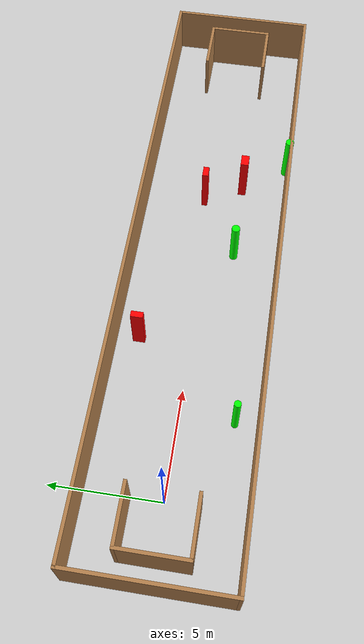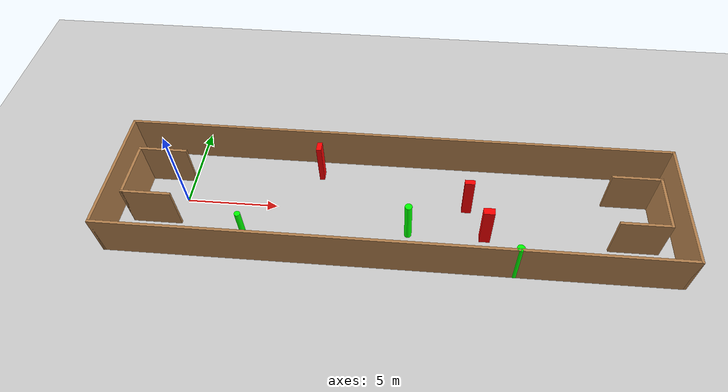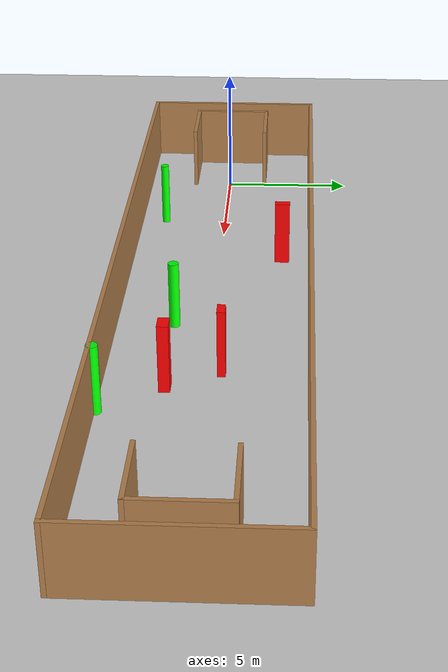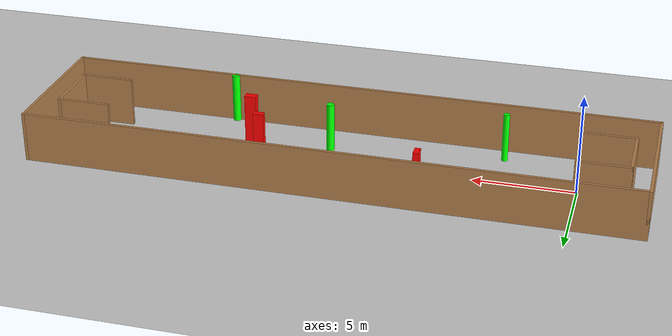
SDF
<sdf version="1.7">
 <world name="default">
  <light name="sun" type="directional">
   <pose>0 0 10 0 -0 0</pose>
   <diffuse>0.8 0.8 0.8 1</diffuse>
   <specular>0.2 0.2 0.2 1</specular>
   <attenuation>
    <range>1000</range>
    <constant>0.9</constant>
    <linear>0.01</linear>
    <quadratic>0.001</quadratic>
   </attenuation>
   <direction>-0.5 0.1 -0.9</direction>
   <spot><inner_angle>0</inner_angle><outer_angle>0</outer_angle><falloff>0</falloff></spot>
  </light>
  <model name="ground_plane">
   <static>1</static>
   <link name="link">
    <collision name="collision">
     <geometry><plane><normal>0 0 1</normal><size>100 100</size></plane></geometry>
     <surface>
      <contact><collide_bitmask>65535</collide_bitmask></contact>
      <friction><ode><mu>100</mu><mu2>50</mu2></ode></friction>
     </surface>
    </collision>
    <visual name="visual">
     <cast_shadows>0</cast_shadows>
     <geometry><plane><normal>0 0 1</normal><size>100 100</size></plane></geometry>
     <material>
      <script><uri>file://media/materials/scripts/gazebo.material</uri><name>Gazebo/Grey</name></script>
     </material>
    </visual>
   </link>
  </model>
  <gravity>0 0 -9.8</gravity>
  <magnetic_field>6e-06 2.3e-05 -4.2e-05</magnetic_field>
  <atmosphere type="adiabatic"/>
  <physics type="ode">
   <max_step_size>0.001</max_step_size>
   <real_time_factor>1</real_time_factor>
   <real_time_update_rate>1000</real_time_update_rate>
  </physics>
  <scene><ambient>0.4 0.4 0.4 1</ambient><background>0.7 0.7 0.7 1</background><shadows>1</shadows></scene>
  <spherical_coordinates>
   <surface_model>EARTH_WGS84</surface_model>
   <latitude_deg>0</latitude_deg>
   <longitude_deg>0</longitude_deg>
   <elevation>0</elevation>
   <heading_deg>0</heading_deg>
  </spherical_coordinates>
  <model name="my_base_walls">
   <link name="Wall_0">
    <collision name="Wall_0_Collision">
     <geometry><box><size>7.15 0.15 2.5</size></box></geometry>
     <pose>0 0 1.25 0 -0 0</pose>
    </collision>
    <visual name="Wall_0_Visual">
     <pose>0 0 1.25 0 -0 0</pose>
     <geometry><box><size>7.15 0.15 2.5</size></box></geometry>
     <material>
      <script><uri>file://media/materials/scripts/gazebo.material</uri><name>Gazebo/Wood</name></script>
      <ambient>1 1 1 1</ambient>
     </material>
     <meta><layer>0</layer></meta>
    </visual>
    <pose>-15 0 0 0 -0 1.5708</pose>
   </link>
   <link name="Wall_10">
    <collision name="Wall_10_Collision">
     <geometry><box><size>2.65 0.15 2.5</size></box></geometry>
     <pose>0 0 1.25 0 -0 0</pose>
    </collision>
    <visual name="Wall_10_Visual">
     <pose>0 0 1.25 0 -0 0</pose>
     <geometry><box><size>2.65 0.15 2.5</size></box></geometry>
     <material>
      <script><uri>file://media/materials/scripts/gazebo.material</uri><name>Gazebo/Wood</name></script>
      <ambient>1 1 1 1</ambient>
     </material>
     <meta><layer>0</layer></meta>
    </visual>
    <pose>-12.75 -1.5 0 0 -0 0</pose>
   </link>
   <link name="Wall_12">
    <collision name="Wall_12_Collision">
     <geometry><box><size>2.65 0.15 2.5</size></box></geometry>
     <pose>0 0 1.25 0 -0 0</pose>
    </collision>
    <visual name="Wall_12_Visual">
     <pose>0 0 1.25 0 -0 0</pose>
     <geometry><box><size>2.65 0.15 2.5</size></box></geometry>
     <material>
      <script><uri>file://media/materials/scripts/gazebo.material</uri><name>Gazebo/Wood</name></script>
      <ambient>1 1 1 1</ambient>
     </material>
     <meta><layer>0</layer></meta>
    </visual>
    <pose>-12.75 1.5 0 0 -0 0</pose>
   </link>
   <link name="Wall_14">
    <collision name="Wall_14_Collision">
     <geometry><box><size>3.15 0.15 2.5</size></box></geometry>
     <pose>0 0 1.25 0 -0 0</pose>
    </collision>
    <visual name="Wall_14_Visual">
     <pose>0 0 1.25 0 -0 0</pose>
     <geometry><box><size>3.15 0.15 2.5</size></box></geometry>
     <material>
      <script><uri>file://media/materials/scripts/gazebo.material</uri><name>Gazebo/Wood</name></script>
      <ambient>1 1 1 1</ambient>
     </material>
     <meta><layer>0</layer></meta>
    </visual>
    <pose>14 0 0 0 -0 -1.5708</pose>
   </link>
   <link name="Wall_15">
    <collision name="Wall_15_Collision">
     <geometry><box><size>2.65 0.15 2.5</size></box></geometry>
     <pose>0 0 1.25 0 -0 0</pose>
    </collision>
    <visual name="Wall_15_Visual">
     <pose>0 0 1.25 0 -0 0</pose>
     <geometry><box><size>2.65 0.15 2.5</size></box></geometry>
     <material>
      <script><uri>file://media/materials/scripts/gazebo.material</uri><name>Gazebo/Wood</name></script>
      <ambient>1 1 1 1</ambient>
     </material>
     <meta><layer>0</layer></meta>
    </visual>
    <pose>12.75 -1.5 0 0 -0 3.14159</pose>
   </link>
   <link name="Wall_17">
    <collision name="Wall_17_Collision">
     <geometry><box><size>2.65 0.15 2.5</size></box></geometry>
     <pose>0 0 1.25 0 -0 0</pose>
    </collision>
    <visual name="Wall_17_Visual">
     <pose>0 0 1.25 0 -0 0</pose>
     <geometry><box><size>2.65 0.15 2.5</size></box></geometry>
     <material>
      <script><uri>file://media/materials/scripts/gazebo.material</uri><name>Gazebo/Wood</name></script>
      <ambient>1 1 1 1</ambient>
     </material>
     <meta><layer>0</layer></meta>
    </visual>
    <pose>12.75 1.5 0 0 -0 3.14159</pose>
   </link>
   <link name="Wall_2">
    <collision name="Wall_2_Collision">
     <geometry><box><size>30.15 0.15 2.5</size></box></geometry>
     <pose>0 0 1.25 0 -0 0</pose>
    </collision>
    <visual name="Wall_2_Visual">
     <pose>0 0 1.25 0 -0 0</pose>
     <geometry><box><size>30.15 0.15 2.5</size></box></geometry>
     <material>
      <script><uri>file://media/materials/scripts/gazebo.material</uri><name>Gazebo/Wood</name></script>
      <ambient>1 1 1 1</ambient>
     </material>
     <meta><layer>0</layer></meta>
    </visual>
    <pose>-0 -3.5 0 0 -0 0</pose>
   </link>
   <link name="Wall_4">
    <collision name="Wall_4_Collision">
     <geometry><box><size>30.15 0.15 2.5</size></box></geometry>
     <pose>0 0 1.25 0 -0 0</pose>
    </collision>
    <visual name="Wall_4_Visual">
     <pose>0 0 1.25 0 -0 0</pose>
     <geometry><box><size>30.15 0.15 2.5</size></box></geometry>
     <material>
      <script><uri>file://media/materials/scripts/gazebo.material</uri><name>Gazebo/Wood</name></script>
      <ambient>1 1 1 1</ambient>
     </material>
     <meta><layer>0</layer></meta>
    </visual>
    <pose>-0 3.5 0 0 -0 0</pose>
   </link>
   <link name="Wall_6">
    <collision name="Wall_6_Collision">
     <geometry><box><size>7.15 0.15 2.5</size></box></geometry>
     <pose>0 0 1.25 0 -0 0</pose>
    </collision>
    <visual name="Wall_6_Visual">
     <pose>0 0 1.25 0 -0 0</pose>
     <geometry><box><size>7.15 0.15 2.5</size></box></geometry>
     <material>
      <script><uri>file://media/materials/scripts/gazebo.material</uri><name>Gazebo/Wood</name></script>
      <ambient>1 1 1 1</ambient>
     </material>
     <meta><layer>0</layer></meta>
    </visual>
    <pose>15 0 0 0 -0 -1.5708</pose>
   </link>
   <link name="Wall_9">
    <collision name="Wall_9_Collision">
     <geometry><box><size>3.15 0.15 2.5</size></box></geometry>
     <pose>0 0 1.25 0 -0 0</pose>
    </collision>
    <visual name="Wall_9_Visual">
     <pose>0 0 1.25 0 -0 0</pose>
     <geometry><box><size>3.15 0.15 2.5</size></box></geometry>
     <material>
      <script><uri>file://media/materials/scripts/gazebo.material</uri><name>Gazebo/Wood</name></script>
      <ambient>1 1 1 1</ambient>
     </material>
     <meta><layer>0</layer></meta>
    </visual>
    <pose>-14 0 0 0 -0 -1.5708</pose>
   </link>
   <static>1</static>
   <pose>11.5 0 0 0 -0 0</pose>
  </model>
  <model name="cylinder1">
   <static>1</static>
   <link name="link">
    <inertial>
     <mass>1</mass>
     <inertia><ixx>0.5</ixx><ixy>0</ixy><ixz>0</ixz><iyy>0.5</iyy><iyz>0</iyz><izz>1</izz></inertia>
    </inertial>
    <collision name="collision">
     <geometry><cylinder><radius>0.20060826351590563</radius><length>2.5</length></cylinder></geometry>
    </collision>
    <visual name="visual">
     <geometry><cylinder><radius>0.20060826351590563</radius><length>2.5</length></cylinder></geometry>
     <material>
      <ambient>0 1 0 1</ambient>
      <diffuse>0 1 0 1</diffuse>
      <specular>0.1 0.1 0.1 1</specular>
      <emissive>0 0 0 0</emissive>
     </material>
    </visual>
   </link>
   <pose>17.94935495092983 -3.398948258416411 1.25 0 0 0</pose>
  </model>
  <model name="cylinder2">
   <static>1</static>
   <link name="link">
    <inertial>
     <mass>1</mass>
     <inertia><ixx>0.5</ixx><ixy>0</ixy><ixz>0</ixz><iyy>0.5</iyy><iyz>0</iyz><izz>1</izz></inertia>
    </inertial>
    <collision name="collision">
     <geometry><cylinder><radius>0.1926515216137074</radius><length>2.5</length></cylinder></geometry>
    </collision>
    <visual name="visual">
     <geometry><cylinder><radius>0.1926515216137074</radius><length>2.5</length></cylinder></geometry>
     <material>
      <ambient>0 1 0 1</ambient>
      <diffuse>0 1 0 1</diffuse>
      <specular>0.1 0.1 0.1 1</specular>
      <emissive>0 0 0 0</emissive>
     </material>
    </visual>
   </link>
   <pose>12.378201964775398 -1.343486112277839 1.25 0 0 0</pose>
  </model>
  <model name="cylinder3">
   <static>1</static>
   <link name="link">
    <inertial>
     <mass>1</mass>
     <inertia><ixx>0.5</ixx><ixy>0</ixy><ixz>0</ixz><iyy>0.5</iyy><iyz>0</iyz><izz>1</izz></inertia>
    </inertial>
    <collision name="collision">
     <geometry><cylinder><radius>0.1542914561307829</radius><length>2.5</length></cylinder></geometry>
    </collision>
    <visual name="visual">
     <geometry><cylinder><radius>0.1542914561307829</radius><length>2.5</length></cylinder></geometry>
     <material>
      <ambient>0 1 0 1</ambient>
      <diffuse>0 1 0 1</diffuse>
      <specular>0.1 0.1 0.1 1</specular>
      <emissive>0 0 0 0</emissive>
     </material>
    </visual>
   </link>
   <pose>3.816030014036844 -2.4647736100690483 1.25 0 0 0</pose>
  </model>
  <model name="box1">
   <static>1</static>
   <link name="link">
    <inertial>
     <mass>1</mass>
     <inertia><ixx>0.083</ixx><ixy>0</ixy><ixz>0</ixz><iyy>0.083</iyy><iyz>0</iyz><izz>0.083</izz></inertia>
    </inertial>
    <collision name="collision">
     <geometry><box><size>0.277344357298829 0.5601027490140789 2.5</size></box></geometry>
    </collision>
    <visual name="visual">
     <geometry><box><size>0.277344357298829 0.5601027490140789 2.5</size></box></geometry>
     <material>
      <ambient>1 0 0 1</ambient>
      <diffuse>1 0 0 1</diffuse>
      <specular>0.1 0.1 0.1 1</specular>
      <emissive>0 0 0 0</emissive>
     </material>
    </visual>
    <sensor name="my_contact" type="contact">
     <contact><collision>box_collision</collision><topic>__default_topic__</topic></contact>
    </sensor>
   </link>
   <pose>7.231852764181282 2.396500790055631 1.25 0 0 0</pose>
  </model>
  <model name="box2">
   <static>1</static>
   <link name="link">
    <inertial>
     <mass>1</mass>
     <inertia><ixx>0.083</ixx><ixy>0</ixy><ixz>0</ixz><iyy>0.083</iyy><iyz>0</iyz><izz>0.083</izz></inertia>
    </inertial>
    <collision name="collision">
     <geometry><box><size>0.5299642960490734 0.280847788410828 2.5</size></box></geometry>
    </collision>
    <visual name="visual">
     <geometry><box><size>0.5299642960490734 0.280847788410828 2.5</size></box></geometry>
     <material>
      <ambient>1 0 0 1</ambient>
      <diffuse>1 0 0 1</diffuse>
      <specular>0.1 0.1 0.1 1</specular>
      <emissive>0 0 0 0</emissive>
     </material>
    </visual>
    <sensor name="my_contact" type="contact">
     <contact><collision>box_collision</collision><topic>__default_topic__</topic></contact>
    </sensor>
   </link>
   <pose>15.481160821369086 0.516714002727853 1.25 0 0 0</pose>
  </model>
  <model name="box3">
   <static>1</static>
   <link name="link">
    <inertial>
     <mass>1</mass>
     <inertia><ixx>0.083</ixx><ixy>0</ixy><ixz>0</ixz><iyy>0.083</iyy><iyz>0</iyz><izz>0.083</izz></inertia>
    </inertial>
    <collision name="collision">
     <geometry><box><size>0.5842599633425112 0.3850325541733249 2.5</size></box></geometry>
    </collision>
    <visual name="visual">
     <geometry><box><size>0.5842599633425112 0.3850325541733249 2.5</size></box></geometry>
     <material>
      <ambient>1 0 0 1</ambient>
      <diffuse>1 0 0 1</diffuse>
      <specular>0.1 0.1 0.1 1</specular>
      <emissive>0 0 0 0</emissive>
     </material>
    </visual>
    <sensor name="my_contact" type="contact">
     <contact><collision>box_collision</collision><topic>__default_topic__</topic></contact>
    </sensor>
   </link>
   <pose>16.4616942509179 -1.3047687713222298 1.25 0 0 0</pose>
  </model>
 </world>
</sdf>
